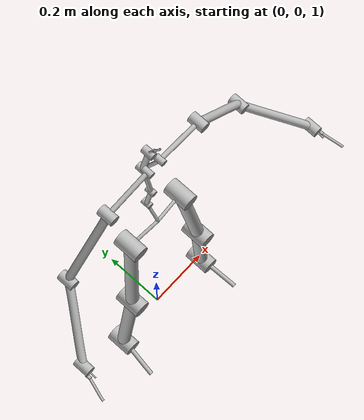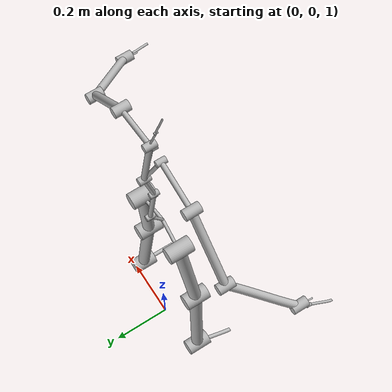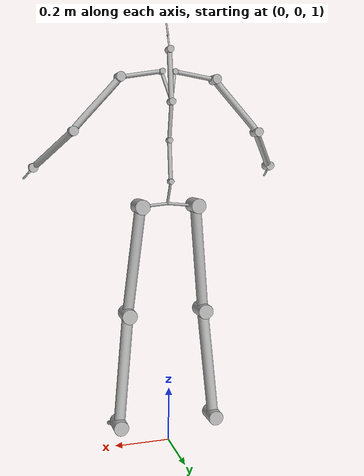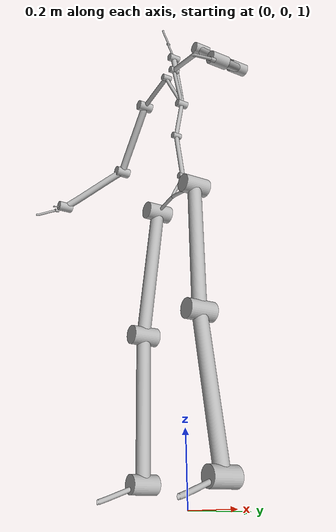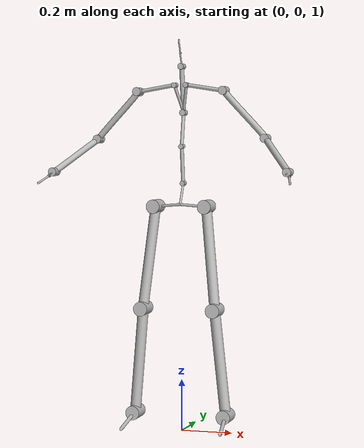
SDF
<?xml version="1.0" ?>
<sdf version="1.5">
	<model name="human_model">
		<pose>0 0 1 1.58 0 0</pose>
		<self_collide>false</self_collide>
		<link name="Hips">
			<pose>0.0 0.874246991787 0.0132157193603 0.0 -0.0 0.0</pose>
			<inertial>
				<mass>1.0</mass>
				<pose>0 0 0 0 0 0</pose>
				<inertia>
					<ixx>1.0</ixx>
					<ixy>0.0</ixy>
					<ixz>0.0</ixz>
					<iyy>1.0</iyy>
					<iyz>0.0</iyz>
					<izz>1.0</izz>
				</inertia>
			</inertial>
			<collision name="Hips_collision1">
				<pose>4.0898842298781e-05 6.227551004514857e-05 -4.773981416489651e-05 -9.920938515151079e-10 -0.0 0.0</pose>
				<geometry>
					<mesh>
						<uri>model://makeHuman_avatar/meshes/collisions/COL_BezierCurve.dae</uri>
					</mesh>
				</geometry>
			</collision>
			<collision name="Hips_collision2">
				<pose>0.0 0.07982063412399043 -0.038716734032582245 -9.920938515151079e-10 -0.0 0.0</pose>
				<geometry>
					<mesh>
						<uri>model://makeHuman_avatar/meshes/collisions/COL_BezierCurve_005.dae</uri>
					</mesh>
				</geometry>
			</collision>
			<collision name="Hips_collision3">
				<pose>-4.0898842298781e-05 6.227551004514857e-05 -4.773981416489651e-05 -9.920938515151079e-10 -0.0 0.0</pose>
				<geometry>
					<mesh>
						<uri>model://makeHuman_avatar/meshes/collisions/COL_BezierCurve_025.dae</uri>
					</mesh>
				</geometry>
			</collision>
			<visual name="Hips1">
				<pose>4.0898842298781e-05 6.227551004514857e-05 -4.773981416489651e-05 -9.920952948050399e-10 -0.0 0.0</pose>
				<geometry>
					<mesh>
						<uri>model://makeHuman_avatar/meshes/visual/BezierCurve.dae</uri> <scale>0.1 0.1 0.1</scale>
					</mesh>
				</geometry>
			</visual>
			<visual name="Hips2">
				<pose>0.0 0.07982063412399043 -0.038716734032582245 -9.920952948050399e-10 -0.0 0.0</pose>
				<geometry>
					<mesh>
						<uri>model://makeHuman_avatar/meshes/visual/BezierCurve_005.dae</uri> <scale>0.1 0.1 0.1</scale>
					</mesh>
				</geometry>
			</visual>
			<visual name="Hips3">
				<pose>-4.0898842298781e-05 6.227551004514857e-05 -4.773981416489651e-05 -9.920952948050399e-10 -0.0 0.0</pose>
				<geometry>
					<mesh>
						<uri>model://makeHuman_avatar/meshes/visual/BezierCurve_025.dae</uri> <scale>0.1 0.1 0.1</scale>
					</mesh>
				</geometry>
			</visual>
		</link>
		<link name="LHipJoint">
			<pose>4.08988422988e-05 0.874309171353 0.0131679805095 0.0 -0.0 0.0</pose>
			<inertial>
				<mass>1.0</mass>
				<pose>0 0 0 0 0 0</pose>
				<inertia>
					<ixx>1.0</ixx>
					<ixy>0.0</ixy>
					<ixz>0.0</ixz>
					<iyy>1.0</iyy>
					<iyz>0.0</iyz>
					<izz>1.0</izz>
				</inertia>
			</inertial>
			<collision name="LHipJoint_collision1">
				<pose>0.101318432410336 -0.008075332761933396 -0.008275742207106085 4.98025121142831e-10 -0.0 0.0</pose>
				<geometry>
					<mesh>
						<uri>model://makeHuman_avatar/meshes/collisions/COL_BezierCurve_001.dae</uri>
					</mesh>
				</geometry>
			</collision>
			<visual name="LHipJoint1">
				<pose>0.101318432410336 -0.008075332761933396 -0.008275742207106085 4.980265089216118e-10 -0.0 0.0</pose>
				<geometry>
					<mesh>
						<uri>model://makeHuman_avatar/meshes/visual/BezierCurve_001.dae</uri> <scale>0.1 0.1 0.1</scale>
					</mesh>
				</geometry>
			</visual>
		</link>
		<link name="LeftUpLeg">
			<pose>0.101359331253 0.866233838591 0.00489224053757 0.0 -0.0 0.0</pose>
			<inertial>
				<mass>1.0</mass>
				<pose>0 0 0 0 0 0</pose>
				<inertia>
					<ixx>1.0</ixx>
					<ixy>0.0</ixy>
					<ixz>0.0</ixz>
					<iyy>1.0</iyy>
					<iyz>0.0</iyz>
					<izz>1.0</izz>
				</inertia>
			</inertial>
			<collision name="LeftUpLeg_collision1">
				<pose>0.041113961355596196 -0.3910068570227452 0.03251319278051246 1.243083191937444e-09 -0.0 0.0</pose>
				<geometry>
					<mesh>
						<uri>model://makeHuman_avatar/meshes/collisions/COL_BezierCurve_002.dae</uri>
					</mesh>
				</geometry>
			</collision>
			<visual name="LeftUpLeg1">
				<pose>0.041113961355596196 -0.3910068570227452 0.03251319278051246 1.2430838580712589e-09 -0.0 0.0</pose>
				<geometry>
					<mesh>
						<uri>model://makeHuman_avatar/meshes/visual/BezierCurve_002.dae</uri> <scale>0.1 0.1 0.1</scale>
					</mesh>
				</geometry>
			</visual>
			<visual name="LeftUpLeg2">
				<pose>0.0 -9.515814127468817e-08 -1.7716104403244253e-10 1.2430838580712589e-09 -0.0 0.0</pose>
				<geometry>
					<mesh>
						<uri>model://makeHuman_avatar/meshes/visual/LeftUpLeg_axis.dae</uri> <scale>0.1 0.1 0.1</scale>
					</mesh>
				</geometry>
			</visual>
		</link>
		<link name="LeftLeg">
			<pose>0.142473292609 0.475227029252 0.0374054303379 0.0 -0.0 0.0</pose>
			<inertial>
				<mass>1.0</mass>
				<pose>0 0 0 0 0 0</pose>
				<inertia>
					<ixx>1.0</ixx>
					<ixy>0.0</ixy>
					<ixz>0.0</ixz>
					<iyy>1.0</iyy>
					<iyz>0.0</iyz>
					<izz>1.0</izz>
				</inertia>
			</inertial>
			<collision name="LeftLeg_collision1">
				<pose>0.038103199572908864 -0.4055328906406892 -0.014725378375133547 -3.9723233591359985e-09 2.3841858265427618e-08 8.470329598760748e-23</pose>
				<geometry>
					<mesh>
						<uri>model://makeHuman_avatar/meshes/collisions/COL_BezierCurve_003.dae</uri>
					</mesh>
				</geometry>
			</collision>
			<visual name="LeftLeg1">
				<pose>0.038103199572908864 -0.4055328906406892 -0.014725378375133547 -3.972321138689949e-09 2.3841860041784457e-08 0.0</pose>
				<geometry>
					<mesh>
						<uri>model://makeHuman_avatar/meshes/visual/BezierCurve_003.dae</uri> <scale>0.1 0.1 0.1</scale>
					</mesh>
				</geometry>
			</visual>
			<visual name="LeftLeg2">
				<pose>0.0 1.6002074570727005e-09 -5.429082331329558e-09 -3.972321138689949e-09 2.3841860041784457e-08 0.0</pose>
				<geometry>
					<mesh>
						<uri>model://makeHuman_avatar/meshes/visual/LeftLeg_axis.dae</uri> <scale>0.1 0.1 0.1</scale>
					</mesh>
				</geometry>
			</visual>
		</link>
		<link name="LeftFoot">
			<pose>0.180576492182 0.0696940909276 0.0226800534529 0.0 -0.0 0.0</pose>
			<inertial>
				<mass>1.0</mass>
				<pose>0 0 0 0 0 0</pose>
				<inertia>
					<ixx>1.0</ixx>
					<ixy>0.0</ixy>
					<ixz>0.0</ixz>
					<iyy>1.0</iyy>
					<iyz>0.0</iyz>
					<izz>1.0</izz>
				</inertia>
			</inertial>
			<collision name="LeftFoot_collision1">
				<pose>0.013958502023793784 -0.04460706181238683 0.1307900567470499 9.313254611953425e-10 -0.0 0.0</pose>
				<geometry>
					<mesh>
						<uri>model://makeHuman_avatar/meshes/collisions/COL_BezierCurve_004.dae</uri>
					</mesh>
				</geometry>
			</collision>
			<visual name="LeftFoot1">
				<pose>0.013958502023793784 -0.04460706181238683 0.1307900567470499 9.313225746154785e-10 -0.0 0.0</pose>
				<geometry>
					<mesh>
						<uri>model://makeHuman_avatar/meshes/visual/BezierCurve_004.dae</uri> <scale>0.1 0.1 0.1</scale>
					</mesh>
				</geometry>
			</visual>
			<visual name="LeftFoot2">
				<pose>0.0 -1.0950674486062642e-08 1.4888293486755899e-09 9.313225746154785e-10 -0.0 0.0</pose>
				<geometry>
					<mesh>
						<uri>model://makeHuman_avatar/meshes/visual/LeftFoot_axis.dae</uri> <scale>0.1 0.1 0.1</scale>
					</mesh>
				</geometry>
			</visual>
		</link>
		<link name="LeftToeBase">
			<pose>0.194534982285 0.0250870499768 0.1534701102 0.0 -0.0 0.0</pose>
			<inertial>
				<mass>1.0</mass>
				<pose>0 0 0 0 0 0</pose>
				<inertia>
					<ixx>1.0</ixx>
					<ixy>0.0</ixy>
					<ixz>0.0</ixz>
					<iyy>1.0</iyy>
					<iyz>0.0</iyz>
					<izz>1.0</izz>
				</inertia>
			</inertial>
		</link>
		<link name="LowerBack">
			<pose>0.0 0.954067530544 -0.0255010146723 0.0 -0.0 0.0</pose>
			<inertial>
				<mass>1.0</mass>
				<pose>0 0 0 0 0 0</pose>
				<inertia>
					<ixx>1.0</ixx>
					<ixy>0.0</ixy>
					<ixz>0.0</ixz>
					<iyy>1.0</iyy>
					<iyz>0.0</iyz>
					<izz>1.0</izz>
				</inertia>
			</inertial>
			<collision name="LowerBack_collision1">
				<pose>0.0 0.1412628194877925 0.017108939843012982 4.980194590054055e-10 -0.0 0.0</pose>
				<geometry>
					<mesh>
						<uri>model://makeHuman_avatar/meshes/collisions/COL_BezierCurve_006.dae</uri>
					</mesh>
				</geometry>
			</collision>
			<visual name="LowerBack1">
				<pose>0.0 0.1412628194877925 0.017108939843012982 4.980194590054055e-10 -0.0 0.0</pose>
				<geometry>
					<mesh>
						<uri>model://makeHuman_avatar/meshes/visual/BezierCurve_006.dae</uri> <scale>0.1 0.1 0.1</scale>
					</mesh>
				</geometry>
			</visual>
			<visual name="LowerBack2">
				<pose>0.0 -9.648212115349729e-08 -2.960592881669393e-09 4.980194590054055e-10 -0.0 0.0</pose>
				<geometry>
					<mesh>
						<uri>model://makeHuman_avatar/meshes/visual/LowerBack_axis.dae</uri> <scale>0.1 0.1 0.1</scale>
					</mesh>
				</geometry>
			</visual>
		</link>
		<link name="Spine">
			<pose>0.0 1.0953304454 -0.00839207333917 0.0 -0.0 0.0</pose>
			<inertial>
				<mass>1.0</mass>
				<pose>0 0 0 0 0 0</pose>
				<inertia>
					<ixx>1.0</ixx>
					<ixy>0.0</ixy>
					<ixz>0.0</ixz>
					<iyy>1.0</iyy>
					<iyz>0.0</iyz>
					<izz>1.0</izz>
				</inertia>
			</inertial>
			<collision name="Spine_collision">
				<pose>0.0 0.12902202798458973 -0.025047067180977267 -2.4703580847607043e-10 -0.0 0.0</pose>
				<geometry>
					<mesh>
						<uri>model://makeHuman_avatar/meshes/collisions/COL_BezierCurve_007.dae</uri>
					</mesh>
				</geometry>
			</collision>
			<visual name="Spine1">
				<pose>0.0 0.12902202798458973 -0.025047067180977267 -2.4703439294171403e-10 -0.0 0.0</pose>
				<geometry>
					<mesh>
						<uri>model://makeHuman_avatar/meshes/visual/BezierCurve_007.dae</uri> <scale>0.1 0.1 0.1</scale>
					</mesh>
				</geometry>
			</visual>
			<visual name="Spine2">
				<pose>0.0 -3.6682692985786373e-10 -1.9470008118329686e-10 -2.4703439294171403e-10 -0.0 0.0</pose>
				<geometry>
					<mesh>
						<uri>model://makeHuman_avatar/meshes/visual/Spine_axis.dae</uri> <scale>0.1 0.1 0.1</scale>
					</mesh>
				</geometry>
			</visual>
		</link>
		<link name="Spine1">
			<pose>0.0 1.22435247338 -0.0334391375399 0.0 -0.0 0.0</pose>
			<inertial>
				<mass>1.0</mass>
				<pose>0 0 0 0 0 0</pose>
				<inertia>
					<ixx>1.0</ixx>
					<ixy>0.0</ixy>
					<ixz>0.0</ixz>
					<iyy>1.0</iyy>
					<iyz>0.0</iyz>
					<izz>1.0</izz>
				</inertia>
			</inertial>
			<collision name="Spine1_collision1">
				<pose>0.022767527740709892 0.10387725984867302 0.04022380173539819 1.988138320641042e-09 -0.0 0.0</pose>
				<geometry>
					<mesh>
						<uri>model://makeHuman_avatar/meshes/collisions/COL_BezierCurve_008.dae</uri>
					</mesh>
				</geometry>
			</collision>
			<collision name="Spine1_collision">
				<pose>0.0 0.17499389909198726 0.023713125641839583 1.988138320641042e-09 -0.0 0.0</pose>
				<geometry>
					<mesh>
						<uri>model://makeHuman_avatar/meshes/collisions/COL_BezierCurve_015.dae</uri>
					</mesh>
				</geometry>
			</collision>
			<collision name="Spine1_collision3">
				<pose>-0.022767527740709892 0.10387725984867302 0.04022380173539819 1.988138320641042e-09 -0.0 0.0</pose>
				<geometry>
					<mesh>
						<uri>model://makeHuman_avatar/meshes/collisions/COL_BezierCurve_018.dae</uri>
					</mesh>
				</geometry>
			</collision>
			<visual name="Spine11">
				<pose>0.022767527740709892 0.10387725984867302 0.04022380173539819 1.988141207220906e-09 -0.0 0.0</pose>
				<geometry>
					<mesh>
						<uri>model://makeHuman_avatar/meshes/visual/BezierCurve_008.dae</uri> <scale>0.1 0.1 0.1</scale>
					</mesh>
				</geometry>
			</visual>
			<visual name="Spine12">
				<pose>0.0 0.17499389909198726 0.023713125641839583 1.988141207220906e-09 -0.0 0.0</pose>
				<geometry>
					<mesh>
						<uri>model://makeHuman_avatar/meshes/visual/BezierCurve_015.dae</uri> <scale>0.1 0.1 0.1</scale>
					</mesh>
				</geometry>
			</visual>
			<visual name="Spine13">
				<pose>-0.022767527740709892 0.10387725984867302 0.04022380173539819 1.988141207220906e-09 -0.0 0.0</pose>
				<geometry>
					<mesh>
						<uri>model://makeHuman_avatar/meshes/visual/BezierCurve_018.dae</uri> <scale>0.1 0.1 0.1</scale>
					</mesh>
				</geometry>
			</visual>
			<visual name="Spine14">
				<pose>0.0 -9.68291047560779e-08 -2.8541933686602565e-09 1.988141207220906e-09 -0.0 0.0</pose>
				<geometry>
					<mesh>
						<uri>model://makeHuman_avatar/meshes/visual/Spine1_axis.dae</uri> <scale>0.1 0.1 0.1</scale>
					</mesh>
				</geometry>
			</visual>
		</link>
		<link name="LeftShoulder">
			<pose>0.0227675277407 1.32822973323 0.0067846641955 0.0 -0.0 0.0</pose>
			<inertial>
				<mass>1.0</mass>
				<pose>0 0 0 0 0 0</pose>
				<inertia>
					<ixx>1.0</ixx>
					<ixy>0.0</ixy>
					<ixz>0.0</ixz>
					<iyy>1.0</iyy>
					<iyz>0.0</iyz>
					<izz>1.0</izz>
				</inertia>
			</inertial>
			<collision name="LeftShoulder_collision1">
				<pose>0.1472653291712005 -0.0226767543357127 -0.002212353828733471 1.254932130434483e-10 -0.0 0.0</pose>
				<geometry>
					<mesh>
						<uri>model://makeHuman_avatar/meshes/collisions/COL_BezierCurve_009.dae</uri>
					</mesh>
				</geometry>
			</collision>
			<visual name="LeftShoulder1">
				<pose>0.1472653291712005 -0.0226767543357127 -0.002212353828733471 1.254925052762701e-10 -0.0 0.0</pose>
				<geometry>
					<mesh>
						<uri>model://makeHuman_avatar/meshes/visual/BezierCurve_009.dae</uri> <scale>0.1 0.1 0.1</scale>
					</mesh>
				</geometry>
			</visual>
			<visual name="LeftShoulder2">
				<pose>-1.4901161415892261e-09 9.566400791969416e-08 5.5763394733391984e-11 1.254925052762701e-10 -0.0 0.0</pose>
				<geometry>
					<mesh>
						<uri>model://makeHuman_avatar/meshes/visual/LeftShoulder_axis.dae</uri> <scale>0.1 0.1 0.1</scale>
					</mesh>
				</geometry>
			</visual>
		</link>
		<link name="LeftArm">
			<pose>0.170032856912 1.30555297889 0.00457231036677 0.0 -0.0 0.0</pose>
			<inertial>
				<mass>1.0</mass>
				<pose>0 0 0 0 0 0</pose>
				<inertia>
					<ixx>1.0</ixx>
					<ixy>0.0</ixy>
					<ixz>0.0</ixz>
					<iyy>1.0</iyy>
					<iyz>0.0</iyz>
					<izz>1.0</izz>
				</inertia>
			</inertial>
			<collision name="LeftArm_collision1">
				<pose>0.16132252456728402 -0.18058624536672596 0.0007237784672346481 1.254932130434483e-10 -2.980232505223057e-09 0.0</pose>
				<geometry>
					<mesh>
						<uri>model://makeHuman_avatar/meshes/collisions/COL_BezierCurve_010.dae</uri>
					</mesh>
				</geometry>
			</collision>
			<visual name="LeftArm1">
				<pose>0.16132252456728402 -0.18058624536672596 0.0007237784672346481 1.254925052762701e-10 -2.980232949312267e-09 0.0</pose>
				<geometry>
					<mesh>
						<uri>model://makeHuman_avatar/meshes/visual/BezierCurve_010.dae</uri> <scale>0.1 0.1 0.1</scale>
					</mesh>
				</geometry>
			</visual>
			<visual name="LeftArm2">
				<pose>-1.1920929132713809e-08 -2.8590243772143865e-07 -7.057678990925534e-11 1.254925052762701e-10 -2.980232949312267e-09 0.0</pose>
				<geometry>
					<mesh>
						<uri>model://makeHuman_avatar/meshes/visual/LeftArm_axis.dae</uri> <scale>0.1 0.1 0.1</scale>
					</mesh>
				</geometry>
			</visual>
		</link>
		<link name="LeftForeArm">
			<pose>0.331355405321 1.12496692426 0.00529608846148 0.0 -0.0 0.0</pose>
			<inertial>
				<mass>1.0</mass>
				<pose>0 0 0 0 0 0</pose>
				<inertia>
					<ixx>1.0</ixx>
					<ixy>0.0</ixy>
					<ixz>0.0</ixz>
					<iyy>1.0</iyy>
					<iyz>0.0</iyz>
					<izz>1.0</izz>
				</inertia>
			</inertial>
			<collision name="LeftForeArm_collision1">
				<pose>0.1219484585813948 -0.12415675109858437 0.1632420325762336 1.254932130434483e-10 -0.0 0.0</pose>
				<geometry>
					<mesh>
						<uri>model://makeHuman_avatar/meshes/collisions/COL_BezierCurve_011.dae</uri>
					</mesh>
				</geometry>
			</collision>
			<visual name="LeftForeArm1">
				<pose>0.1219484585813948 -0.12415675109858437 0.1632420325762336 1.254925052762701e-10 -0.0 0.0</pose>
				<geometry>
					<mesh>
						<uri>model://makeHuman_avatar/meshes/visual/BezierCurve_011.dae</uri> <scale>0.1 0.1 0.1</scale>
					</mesh>
				</geometry>
			</visual>
			<visual name="LeftForeArm2">
				<pose>-2.3841858265427618e-08 9.559893357281262e-08 -3.410605182470458e-14 1.254925052762701e-10 -0.0 0.0</pose>
				<geometry>
					<mesh>
						<uri>model://makeHuman_avatar/meshes/visual/LeftForeArm_axis.dae</uri> <scale>0.1 0.1 0.1</scale>
					</mesh>
				</geometry>
			</visual>
		</link>
		<link name="LeftHand">
			<pose>0.453303911586 1.00081016124 0.168538121038 0.0 -0.0 0.0</pose>
			<inertial>
				<mass>1.0</mass>
				<pose>0 0 0 0 0 0</pose>
				<inertia>
					<ixx>1.0</ixx>
					<ixy>0.0</ixy>
					<ixz>0.0</ixz>
					<iyy>1.0</iyy>
					<iyz>0.0</iyz>
					<izz>1.0</izz>
				</inertia>
			</inertial>
			<collision name="LeftHand_collision1">
				<pose>0.0011217594313883694 -0.007652464623040922 0.04383967286109436 -3.972326023671258e-09 -2.3841858265427618e-08 -2.980233659855003e-08</pose>
				<geometry>
					<mesh>
						<uri>model://makeHuman_avatar/meshes/collisions/COL_BezierCurve_012.dae</uri>
					</mesh>
				</geometry>
			</collision>
			<collision name="LeftHand_collision2">
				<pose>0.010663080374346379 -0.015765467521033694 0.026028734833430267 -3.972326023671258e-09 -2.3841858265427618e-08 -2.980233659855003e-08</pose>
				<geometry>
					<mesh>
						<uri>model://makeHuman_avatar/meshes/collisions/COL_BezierCurve_013.dae</uri>
					</mesh>
				</geometry>
			</collision>
			<visual name="LeftHand1">
				<pose>0.0011217594313883694 -0.007652464623040922 0.04383967286109436 -3.972328244117307e-09 -2.3841861818141297e-08 -2.980233304583635e-08</pose>
				<geometry>
					<mesh>
						<uri>model://makeHuman_avatar/meshes/visual/BezierCurve_012.dae</uri> <scale>0.1 0.1 0.1</scale>
					</mesh>
				</geometry>
			</visual>
			<visual name="LeftHand2">
				<pose>0.010663080374346379 -0.015765467521033694 0.026028734833430267 -3.972328244117307e-09 -2.3841861818141297e-08 -2.980233304583635e-08</pose>
				<geometry>
					<mesh>
						<uri>model://makeHuman_avatar/meshes/visual/BezierCurve_013.dae</uri> <scale>0.1 0.1 0.1</scale>
					</mesh>
				</geometry>
			</visual>
			<visual name="LeftHand3">
				<pose>0.0 7.367037934001517e-09 2.777877382880199e-08 -3.972328244117307e-09 -2.3841860041784457e-08 0.0</pose>
				<geometry>
					<mesh>
						<uri>model://makeHuman_avatar/meshes/visual/LeftHand_axis.dae</uri> <scale>0.1 0.1 0.1</scale>
					</mesh>
				</geometry>
			</visual>
		</link>
		<link name="LThumb">
			<pose>0.454425671017 0.993157687676 0.212377790919 0.0 -0.0 0.0</pose>
			<inertial>
				<mass>1.0</mass>
				<pose>0 0 0 0 0 0</pose>
				<inertia>
					<ixx>1.0</ixx>
					<ixy>0.0</ixy>
					<ixz>0.0</ixz>
					<iyy>1.0</iyy>
					<iyz>0.0</iyz>
					<izz>1.0</izz>
				</inertia>
			</inertial>
		</link>
		<link name="LeftFingerBase">
			<pose>0.46396699196 0.985044684778 0.19456683799 0.0 -0.0 0.0</pose>
			<inertial>
				<mass>1.0</mass>
				<pose>0 0 0 0 0 0</pose>
				<inertia>
					<ixx>1.0</ixx>
					<ixy>0.0</ixy>
					<ixz>0.0</ixz>
					<iyy>1.0</iyy>
					<iyz>0.0</iyz>
					<izz>1.0</izz>
				</inertia>
			</inertial>
			<collision name="LeftFingerBase_collision1">
				<pose>0.017114945011063587 -0.024840616059908505 0.06827558976822479 -3.9723264677604675e-09 4.7683720083568915e-08 2.980233304583635e-08</pose>
				<geometry>
					<mesh>
						<uri>model://makeHuman_avatar/meshes/collisions/COL_BezierCurve_014.dae</uri>
					</mesh>
				</geometry>
			</collision>
			<visual name="LeftFingerBase1">
				<pose>0.017114945011063587 -0.024840616059908505 0.06827558976822479 -3.972328688206517e-09 4.768372718899627e-08 2.980233659855003e-08</pose>
				<geometry>
					<mesh>
						<uri>model://makeHuman_avatar/meshes/visual/BezierCurve_014.dae</uri> <scale>0.1 0.1 0.1</scale>
					</mesh>
				</geometry>
			</visual>
			<visual name="LeftFingerBase2">
				<pose>-2.9356616420026327e-08 -7.303535307674902e-08 -1.9215807187567207e-08 -3.972328688206517e-09 4.7683723636282593e-08 -2.980233659855003e-08</pose>
				<geometry>
					<mesh>
						<uri>model://makeHuman_avatar/meshes/visual/LeftFingerBase_axis.dae</uri> <scale>0.1 0.1 0.1</scale>
					</mesh>
				</geometry>
			</visual>
		</link>
		<link name="LeftHandFinger1">
			<pose>0.4810819176 0.960204043386 0.262842469481 0.0 -0.0 0.0</pose>
			<inertial>
				<mass>1.0</mass>
				<pose>0 0 0 0 0 0</pose>
				<inertia>
					<ixx>1.0</ixx>
					<ixy>0.0</ixy>
					<ixz>0.0</ixz>
					<iyy>1.0</iyy>
					<iyz>0.0</iyz>
					<izz>1.0</izz>
				</inertia>
			</inertial>
		</link>
		<link name="Neck">
			<pose>0.0 1.39934646784 -0.00972601040794 0.0 -0.0 0.0</pose>
			<inertial>
				<mass>1.0</mass>
				<pose>0 0 0 0 0 0</pose>
				<inertia>
					<ixx>1.0</ixx>
					<ixy>0.0</ixy>
					<ixz>0.0</ixz>
					<iyy>1.0</iyy>
					<iyz>0.0</iyz>
					<izz>1.0</izz>
				</inertia>
			</inertial>
			<collision name="Neck_collision1">
				<pose>0.0 0.0504392631417403 0.01958704321961169 -2.4703580847607043e-10 -0.0 0.0</pose>
				<geometry>
					<mesh>
						<uri>model://makeHuman_avatar/meshes/collisions/COL_BezierCurve_016.dae</uri>
					</mesh>
				</geometry>
			</collision>
			<visual name="Neck1">
				<pose>0.0 0.0504392631417403 0.01958704321961169 -2.4703439294171403e-10 -0.0 0.0</pose>
				<geometry>
					<mesh>
						<uri>model://makeHuman_avatar/meshes/visual/BezierCurve_016.dae</uri> <scale>0.1 0.1 0.1</scale>
					</mesh>
				</geometry>
			</visual>
			<visual name="Neck2">
				<pose>0.0 -4.2513477816592795e-10 -7.261178433479605e-11 -2.4703439294171403e-10 -0.0 0.0</pose>
				<geometry>
					<mesh>
						<uri>model://makeHuman_avatar/meshes/visual/Neck_axis.dae</uri> <scale>0.1 0.1 0.1</scale>
					</mesh>
				</geometry>
			</visual>
		</link>
		<link name="Neck1">
			<pose>0.0 1.44978573098 0.00986103281167 0.0 -0.0 0.0</pose>
			<inertial>
				<mass>1.0</mass>
				<pose>0 0 0 0 0 0</pose>
				<inertia>
					<ixx>1.0</ixx>
					<ixy>0.0</ixy>
					<ixz>0.0</ixz>
					<iyy>1.0</iyy>
					<iyz>0.0</iyz>
					<izz>1.0</izz>
				</inertia>
			</inertial>
			<collision name="Neck1_collision1">
				<pose>0.0 0.0504751212965715 0.019639218146193294 -2.4703583623164604e-10 -0.0 0.0</pose>
				<geometry>
					<mesh>
						<uri>model://makeHuman_avatar/meshes/collisions/COL_BezierCurve_017.dae</uri>
					</mesh>
				</geometry>
			</collision>
			<visual name="Neck11">
				<pose>0.0 0.0504751212965715 0.019639218146193294 -2.4703797341096845e-10 -0.0 0.0</pose>
				<geometry>
					<mesh>
						<uri>model://makeHuman_avatar/meshes/visual/BezierCurve_017.dae</uri> <scale>0.1 0.1 0.1</scale>
					</mesh>
				</geometry>
			</visual>
			<visual name="Neck12">
				<pose>0.0 4.310422305590653e-10 -4.2206239133071914e-11 -2.4703797341096845e-10 -0.0 0.0</pose>
				<geometry>
					<mesh>
						<uri>model://makeHuman_avatar/meshes/visual/Neck1_axis.dae</uri> <scale>0.1 0.1 0.1</scale>
					</mesh>
				</geometry>
			</visual>
		</link>
		<link name="Head">
			<pose>0.0 1.50026085228 0.0295002509579 0.0 -0.0 0.0</pose>
			<inertial>
				<mass>1.0</mass>
				<pose>0 0 0 0 0 0</pose>
				<inertia>
					<ixx>1.0</ixx>
					<ixy>0.0</ixy>
					<ixz>0.0</ixz>
					<iyy>1.0</iyy>
					<iyz>0.0</iyz>
					<izz>1.0</izz>
				</inertia>
			</inertial>
		</link>
		<link name="RightShoulder">
			<pose>-0.0227675277407 1.32822973323 0.0067846641955 0.0 -0.0 0.0</pose>
			<inertial>
				<mass>1.0</mass>
				<pose>0 0 0 0 0 0</pose>
				<inertia>
					<ixx>1.0</ixx>
					<ixy>0.0</ixy>
					<ixz>0.0</ixz>
					<iyy>1.0</iyy>
					<iyz>0.0</iyz>
					<izz>1.0</izz>
				</inertia>
			</inertial>
			<collision name="RightShoulder_collision1">
				<pose>-0.1472653291712005 -0.0226767543357127 -0.002212353828733471 1.254932130434483e-10 -0.0 0.0</pose>
				<geometry>
					<mesh>
						<uri>model://makeHuman_avatar/meshes/collisions/COL_BezierCurve_019.dae</uri>
					</mesh>
				</geometry>
			</collision>
			<visual name="RightShoulder1">
				<pose>-0.1472653291712005 -0.0226767543357127 -0.002212353828733471 1.254925052762701e-10 -0.0 0.0</pose>
				<geometry>
					<mesh>
						<uri>model://makeHuman_avatar/meshes/visual/BezierCurve_019.dae</uri> <scale>0.1 0.1 0.1</scale>
					</mesh>
				</geometry>
			</visual>
			<visual name="RightShoulder2">
				<pose>1.4901161415892261e-09 9.566400791969416e-08 5.5763394733391984e-11 1.254925052762701e-10 -0.0 0.0</pose>
				<geometry>
					<mesh>
						<uri>model://makeHuman_avatar/meshes/visual/RightShoulder_axis.dae</uri> <scale>0.1 0.1 0.1</scale>
					</mesh>
				</geometry>
			</visual>
		</link>
		<link name="RightArm">
			<pose>-0.170032856912 1.30555297889 0.00457231036677 0.0 -0.0 0.0</pose>
			<inertial>
				<mass>1.0</mass>
				<pose>0 0 0 0 0 0</pose>
				<inertia>
					<ixx>1.0</ixx>
					<ixy>0.0</ixy>
					<ixz>0.0</ixz>
					<iyy>1.0</iyy>
					<iyz>0.0</iyz>
					<izz>1.0</izz>
				</inertia>
			</inertial>
			<collision name="RightArm_collision1">
				<pose>-0.16132252456728402 -0.18058624536672596 0.0007237784672346481 1.254932130434483e-10 2.980232505223057e-09 0.0</pose>
				<geometry>
					<mesh>
						<uri>model://makeHuman_avatar/meshes/collisions/COL_BezierCurve_020.dae</uri>
					</mesh>
				</geometry>
			</collision>
			<visual name="RightArm1">
				<pose>-0.16132252456728402 -0.18058624536672596 0.0007237784672346481 1.254925052762701e-10 2.980232949312267e-09 0.0</pose>
				<geometry>
					<mesh>
						<uri>model://makeHuman_avatar/meshes/visual/BezierCurve_020.dae</uri> <scale>0.1 0.1 0.1</scale>
					</mesh>
				</geometry>
			</visual>
			<visual name="RightArm2">
				<pose>1.1920929132713809e-08 -2.8590243772143865e-07 -7.057678990925534e-11 1.254925052762701e-10 2.980232949312267e-09 0.0</pose>
				<geometry>
					<mesh>
						<uri>model://makeHuman_avatar/meshes/visual/RightArm_axis.dae</uri> <scale>0.1 0.1 0.1</scale>
					</mesh>
				</geometry>
			</visual>
		</link>
		<link name="RightForeArm">
			<pose>-0.331355405321 1.12496692426 0.00529608846148 0.0 -0.0 0.0</pose>
			<inertial>
				<mass>1.0</mass>
				<pose>0 0 0 0 0 0</pose>
				<inertia>
					<ixx>1.0</ixx>
					<ixy>0.0</ixy>
					<ixz>0.0</ixz>
					<iyy>1.0</iyy>
					<iyz>0.0</iyz>
					<izz>1.0</izz>
				</inertia>
			</inertial>
			<collision name="RightForeArm_collision1">
				<pose>-0.1219484585813948 -0.12415675109858437 0.1632420325762336 1.254932130434483e-10 -0.0 0.0</pose>
				<geometry>
					<mesh>
						<uri>model://makeHuman_avatar/meshes/collisions/COL_BezierCurve_021.dae</uri>
					</mesh>
				</geometry>
			</collision>
			<visual name="RightForeArm1">
				<pose>-0.1219484585813948 -0.12415675109858437 0.1632420325762336 1.254925052762701e-10 -0.0 0.0</pose>
				<geometry>
					<mesh>
						<uri>model://makeHuman_avatar/meshes/visual/BezierCurve_021.dae</uri> <scale>0.1 0.1 0.1</scale>
					</mesh>
				</geometry>
			</visual>
			<visual name="RightForeArm2">
				<pose>2.3841858265427618e-08 9.559893357281262e-08 -3.410605182470458e-14 1.254925052762701e-10 -0.0 0.0</pose>
				<geometry>
					<mesh>
						<uri>model://makeHuman_avatar/meshes/visual/RightForeArm_axis.dae</uri> <scale>0.1 0.1 0.1</scale>
					</mesh>
				</geometry>
			</visual>
		</link>
		<link name="RightHand">
			<pose>-0.453303911586 1.00081016124 0.168538121038 0.0 -0.0 0.0</pose>
			<inertial>
				<mass>1.0</mass>
				<pose>0 0 0 0 0 0</pose>
				<inertia>
					<ixx>1.0</ixx>
					<ixy>0.0</ixy>
					<ixz>0.0</ixz>
					<iyy>1.0</iyy>
					<iyz>0.0</iyz>
					<izz>1.0</izz>
				</inertia>
			</inertial>
			<collision name="RightHand_collision1">
				<pose>-0.0010897636575961656 -0.007653418297371539 0.043807414826861235 -3.972326023671258e-09 2.3841858265427618e-08 2.980233659855003e-08</pose>
				<geometry>
					<mesh>
						<uri>model://makeHuman_avatar/meshes/collisions/COL_BezierCurve_022.dae</uri>
					</mesh>
				</geometry>
			</collision>
			<collision name="RightHand_collision2">
				<pose>-0.010663080374346379 -0.015765467521033694 0.026028734833430267 -3.972326023671258e-09 2.3841858265427618e-08 2.980233659855003e-08</pose>
				<geometry>
					<mesh>
						<uri>model://makeHuman_avatar/meshes/collisions/COL_BezierCurve_023.dae</uri>
					</mesh>
				</geometry>
			</collision>
			<visual name="RightHand1">
				<pose>-0.0010897636575961656 -0.007653418297371539 0.043807414826861235 -3.972328244117307e-09 2.3841861818141297e-08 2.980233304583635e-08</pose>
				<geometry>
					<mesh>
						<uri>model://makeHuman_avatar/meshes/visual/BezierCurve_022.dae</uri> <scale>0.1 0.1 0.1</scale>
					</mesh>
				</geometry>
			</visual>
			<visual name="RightHand2">
				<pose>-0.010663080374346379 -0.015765467521033694 0.026028734833430267 -3.972328244117307e-09 2.3841861818141297e-08 2.980233304583635e-08</pose>
				<geometry>
					<mesh>
						<uri>model://makeHuman_avatar/meshes/visual/BezierCurve_023.dae</uri> <scale>0.1 0.1 0.1</scale>
					</mesh>
				</geometry>
			</visual>
			<visual name="RightHand3">
				<pose>0.0 7.367037934001517e-09 2.777877382880199e-08 -3.972328244117307e-09 2.3841860041784457e-08 0.0</pose>
				<geometry>
					<mesh>
						<uri>model://makeHuman_avatar/meshes/visual/RightHand_axis.dae</uri> <scale>0.1 0.1 0.1</scale>
					</mesh>
				</geometry>
			</visual>
		</link>
		<link name="RThumb">
			<pose>-0.454393675244 0.993156734002 0.212345532885 0.0 -0.0 0.0</pose>
			<inertial>
				<mass>1.0</mass>
				<pose>0 0 0 0 0 0</pose>
				<inertia>
					<ixx>1.0</ixx>
					<ixy>0.0</ixy>
					<ixz>0.0</ixz>
					<iyy>1.0</iyy>
					<iyz>0.0</iyz>
					<izz>1.0</izz>
				</inertia>
			</inertial>
		</link>
		<link name="RightFingerBase">
			<pose>-0.46396699196 0.985044684778 0.19456683799 0.0 -0.0 0.0</pose>
			<inertial>
				<mass>1.0</mass>
				<pose>0 0 0 0 0 0</pose>
				<inertia>
					<ixx>1.0</ixx>
					<ixy>0.0</ixy>
					<ixz>0.0</ixz>
					<iyy>1.0</iyy>
					<iyz>0.0</iyz>
					<izz>1.0</izz>
				</inertia>
			</inertial>
			<collision name="RightFingerBase_collision1">
				<pose>-0.017114945011063587 -0.024840616059908505 0.06827558976822479 -3.9723264677604675e-09 -4.7683720083568915e-08 -2.980233304583635e-08</pose>
				<geometry>
					<mesh>
						<uri>model://makeHuman_avatar/meshes/collisions/COL_BezierCurve_024.dae</uri>
					</mesh>
				</geometry>
			</collision>
			<visual name="RightFingerBase2">
				<pose>-0.017114945011063587 -0.024840616059908505 0.06827558976822479 -3.972328688206517e-09 -4.768372718899627e-08 -2.980233659855003e-08</pose>
				<geometry>
					<mesh>
						<uri>model://makeHuman_avatar/meshes/visual/BezierCurve_024.dae</uri> <scale>0.1 0.1 0.1</scale>
					</mesh>
				</geometry>
			</visual>
			<visual name="RightFingerBase3">
				<pose>2.9356616420026327e-08 -7.303535307674902e-08 -1.9215807187567207e-08 -3.972328688206517e-09 -4.7683723636282593e-08 2.980233659855003e-08</pose>
				<geometry>
					<mesh>
						<uri>model://makeHuman_avatar/meshes/visual/RightFingerBase_axis.dae</uri> <scale>0.1 0.1 0.1</scale>
					</mesh>
				</geometry>
			</visual>
		</link>
		<link name="RightHandFinger1">
			<pose>-0.4810819176 0.960204043386 0.262842469481 0.0 -0.0 0.0</pose>
			<inertial>
				<mass>1.0</mass>
				<pose>0 0 0 0 0 0</pose>
				<inertia>
					<ixx>1.0</ixx>
					<ixy>0.0</ixy>
					<ixz>0.0</ixz>
					<iyy>1.0</iyy>
					<iyz>0.0</iyz>
					<izz>1.0</izz>
				</inertia>
			</inertial>
		</link>
		<link name="RHipJoint">
			<pose>-4.08988422988e-05 0.874309171353 0.0131679805095 0.0 -0.0 0.0</pose>
			<inertial>
				<mass>1.0</mass>
				<pose>0 0 0 0 0 0</pose>
				<inertia>
					<ixx>1.0</ixx>
					<ixy>0.0</ixy>
					<ixz>0.0</ixz>
					<iyy>1.0</iyy>
					<iyz>0.0</iyz>
					<izz>1.0</izz>
				</inertia>
			</inertial>
			<collision name="RHipJoint_collision1">
				<pose>-0.101318432410336 -0.008075332761933396 -0.008275742207106085 4.98025121142831e-10 -0.0 0.0</pose>
				<geometry>
					<mesh>
						<uri>model://makeHuman_avatar/meshes/collisions/COL_BezierCurve_026.dae</uri>
					</mesh>
				</geometry>
			</collision>
			<visual name="RHipJoint2">
				<pose>-0.101318432410336 -0.008075332761933396 -0.008275742207106085 4.980265089216118e-10 -0.0 0.0</pose>
				<geometry>
					<mesh>
						<uri>model://makeHuman_avatar/meshes/visual/BezierCurve_026.dae</uri> <scale>0.1 0.1 0.1</scale>
					</mesh>
				</geometry>
			</visual>
		</link>
		<link name="RightUpLeg">
			<pose>-0.101359331253 0.866233838591 0.00489224053757 0.0 -0.0 0.0</pose>
			<inertial>
				<mass>1.0</mass>
				<pose>0 0 0 0 0 0</pose>
				<inertia>
					<ixx>1.0</ixx>
					<ixy>0.0</ixy>
					<ixz>0.0</ixz>
					<iyy>1.0</iyy>
					<iyz>0.0</iyz>
					<izz>1.0</izz>
				</inertia>
			</inertial>
			<collision name="RightUpLeg_collision1">
				<pose>-0.041113961355596196 -0.3910068570227452 0.03251319278051246 1.243083191937444e-09 -0.0 0.0</pose>
				<geometry>
					<mesh>
						<uri>model://makeHuman_avatar/meshes/collisions/COL_BezierCurve_027.dae</uri>
					</mesh>
				</geometry>
			</collision>
			<visual name="RightUpLeg1">
				<pose>-0.041113961355596196 -0.3910068570227452 0.03251319278051246 1.2430838580712589e-09 -0.0 0.0</pose>
				<geometry>
					<mesh>
						<uri>model://makeHuman_avatar/meshes/visual/BezierCurve_027.dae</uri> <scale>0.1 0.1 0.1</scale>
					</mesh>
				</geometry>
			</visual>
			<visual name="RightUpLeg2">
				<pose>0.0 -9.515814127468817e-08 -1.7716104403244253e-10 1.2430838580712589e-09 -0.0 0.0</pose>
				<geometry>
					<mesh>
						<uri>model://makeHuman_avatar/meshes/visual/RightUpLeg_axis.dae</uri> <scale>0.1 0.1 0.1</scale>
					</mesh>
				</geometry>
			</visual>
		</link>
		<link name="RightLeg">
			<pose>-0.142473292609 0.475227029252 0.0374054303379 0.0 -0.0 0.0</pose>
			<inertial>
				<mass>1.0</mass>
				<pose>0 0 0 0 0 0</pose>
				<inertia>
					<ixx>1.0</ixx>
					<ixy>0.0</ixy>
					<ixz>0.0</ixz>
					<iyy>1.0</iyy>
					<iyz>0.0</iyz>
					<izz>1.0</izz>
				</inertia>
			</inertial>
			<collision name="RightLeg_collision1">
				<pose>-0.038103199572908864 -0.4055328906406892 -0.014725378375133547 -3.9723233591359985e-09 -2.3841858265427618e-08 -8.470329598760748e-23</pose>
				<geometry>
					<mesh>
						<uri>model://makeHuman_avatar/meshes/collisions/COL_BezierCurve_028.dae</uri>
					</mesh>
				</geometry>
			</collision>
			<visual name="RightLeg1">
				<pose>-0.038103199572908864 -0.4055328906406892 -0.014725378375133547 -3.972321138689949e-09 -2.3841860041784457e-08 0.0</pose>
				<geometry>
					<mesh>
						<uri>model://makeHuman_avatar/meshes/visual/BezierCurve_028.dae</uri> <scale>0.1 0.1 0.1</scale>
					</mesh>
				</geometry>
			</visual>
			<visual name="RightLeg2">
				<pose>0.0 1.6002074570727005e-09 -5.429082331329558e-09 -3.972321138689949e-09 -2.3841860041784457e-08 0.0</pose>
				<geometry>
					<mesh>
						<uri>model://makeHuman_avatar/meshes/visual/RightLeg_axis.dae</uri> <scale>0.1 0.1 0.1</scale>
					</mesh>
				</geometry>
			</visual>
		</link>
		<link name="RightFoot">
			<pose>-0.180576492182 0.0696940909276 0.0226800534529 0.0 -0.0 0.0</pose>
			<inertial>
				<mass>1.0</mass>
				<pose>0 0 0 0 0 0</pose>
				<inertia>
					<ixx>1.0</ixx>
					<ixy>0.0</ixy>
					<ixz>0.0</ixz>
					<iyy>1.0</iyy>
					<iyz>0.0</iyz>
					<izz>1.0</izz>
				</inertia>
			</inertial>
			<collision name="RightFoot_collision1">
				<pose>-0.013958502023793784 -0.04460706181238683 0.1307900567470499 9.313254611953425e-10 -0.0 0.0</pose>
				<geometry>
					<mesh>
						<uri>model://makeHuman_avatar/meshes/collisions/COL_BezierCurve_029.dae</uri>
					</mesh>
				</geometry>
			</collision>
			<visual name="RightFoot1">
				<pose>-0.013958502023793784 -0.04460706181238683 0.1307900567470499 9.313225746154785e-10 -0.0 0.0</pose>
				<geometry>
					<mesh>
						<uri>model://makeHuman_avatar/meshes/visual/BezierCurve_029.dae</uri> <scale>0.1 0.1 0.1</scale>
					</mesh>
				</geometry>
			</visual>
			<visual name="RightFoot2">
				<pose>0.0 -1.0950674486062642e-08 1.4888293486755899e-09 9.313225746154785e-10 -0.0 0.0</pose>
				<geometry>
					<mesh>
						<uri>model://makeHuman_avatar/meshes/visual/RightFoot_axis.dae</uri> <scale>0.1 0.1 0.1</scale>
					</mesh>
				</geometry>
			</visual>
		</link>
		<link name="RightToeBase">
			<pose>-0.194534982285 0.0250870499768 0.1534701102 0.0 -0.0 0.0</pose>
			<inertial>
				<mass>1.0</mass>
				<pose>0 0 0 0 0 0</pose>
				<inertia>
					<ixx>1.0</ixx>
					<ixy>0.0</ixy>
					<ixz>0.0</ixz>
					<iyy>1.0</iyy>
					<iyz>0.0</iyz>
					<izz>1.0</izz>
				</inertia>
			</inertial>
		</link>

		<joint name="LHipJoint" type="revolute">
			<parent>Hips</parent>
			<child>LHipJoint</child>
			<axis>
				<xyz>0.0 0.0 1.0</xyz>
				<use_parent_model_frame>true</use_parent_model_frame>
				<limit>
					<lower>-1.5707963267948966</lower>
					<upper>1.5707963267948966</upper>
				</limit>
			</axis>
		</joint>
		<joint name="LeftUpLeg" type="ball">
			<parent>LHipJoint</parent>
			<child>LeftUpLeg</child>
			<axis>
				<xyz>0.0 0.0 1.0</xyz>
				<use_parent_model_frame>true</use_parent_model_frame>
				<limit>
					<lower>-1.5707963267948966</lower>
					<upper>1.5707963267948966</upper>
				</limit>
			</axis>
		</joint>
		<joint name="LeftLeg" type="revolute">
			<parent>LeftUpLeg</parent>
			<child>LeftLeg</child>
			<axis>
				<xyz>0.0 0.0 1.0</xyz>
				<use_parent_model_frame>true</use_parent_model_frame>
				<limit>
					<lower>-1.5707963267948966</lower>
					<upper>1.5707963267948966</upper>
				</limit>
			</axis>
		</joint>
		<joint name="LeftFoot" type="revolute">
			<parent>LeftLeg</parent>
			<child>LeftFoot</child>
			<axis>
				<xyz>0.0 0.0 1.0</xyz>
				<use_parent_model_frame>true</use_parent_model_frame>
				<limit>
					<lower>-1.5707963267948966</lower>
					<upper>1.5707963267948966</upper>
				</limit>
			</axis>
		</joint>
		<joint name="LeftToeBase" type="revolute">
			<parent>LeftFoot</parent>
			<child>LeftToeBase</child>
			<axis>
				<xyz>0.0 0.0 1.0</xyz>
				<use_parent_model_frame>true</use_parent_model_frame>
				<limit>
					<lower>-1.5707963267948966</lower>
					<upper>1.5707963267948966</upper>
				</limit>
			</axis>
		</joint>
		<joint name="LowerBack" type="revolute">
			<parent>Hips</parent>
			<child>LowerBack</child>
			<axis>
				<xyz>0.0 0.0 1.0</xyz>
				<use_parent_model_frame>true</use_parent_model_frame>
				<limit>
					<lower>-1.5707963267948966</lower>
					<upper>1.5707963267948966</upper>
				</limit>
			</axis>
		</joint>
		<joint name="Spine" type="revolute">
			<parent>LowerBack</parent>
			<child>Spine</child>
			<axis>
				<xyz>0.0 0.0 1.0</xyz>
				<use_parent_model_frame>true</use_parent_model_frame>
				<limit>
					<lower>-1.5707963267948966</lower>
					<upper>1.5707963267948966</upper>
				</limit>
			</axis>
		</joint>
		<joint name="Spine1" type="revolute">
			<parent>Spine</parent>
			<child>Spine1</child>
			<axis>
				<xyz>0.0 0.0 1.0</xyz>
				<use_parent_model_frame>true</use_parent_model_frame>
				<limit>
					<lower>-1.5707963267948966</lower>
					<upper>1.5707963267948966</upper>
				</limit>
			</axis>
		</joint>
		<joint name="LeftShoulder" type="revolute">
			<parent>Spine1</parent>
			<child>LeftShoulder</child>
			<axis>
				<xyz>0.0 0.0 1.0</xyz>
				<use_parent_model_frame>true</use_parent_model_frame>
				<limit>
					<lower>-1.5707963267948966</lower>
					<upper>1.5707963267948966</upper>
				</limit>
			</axis>
		</joint>
		<joint name="LeftArm" type="ball">
			<parent>LeftShoulder</parent>
			<child>LeftArm</child>
			<axis>
				<xyz>0.0 0.0 1.0</xyz>
				<use_parent_model_frame>true</use_parent_model_frame>
				<limit>
					<lower>-1.5707963267948966</lower>
					<upper>1.5707963267948966</upper>
				</limit>
			</axis>
		</joint>
		<joint name="LeftForeArm" type="revolute">
			<parent>LeftArm</parent>
			<child>LeftForeArm</child>
			<axis>
				<xyz>0.0 0.0 1.0</xyz>
				<use_parent_model_frame>true</use_parent_model_frame>
				<limit>
					<lower>-1.5707963267948966</lower>
					<upper>1.5707963267948966</upper>
				</limit>
			</axis>
		</joint>
		<joint name="LeftHand" type="revolute">
			<parent>LeftForeArm</parent>
			<child>LeftHand</child>
			<axis>
				<xyz>0.0 0.0 1.0</xyz>
				<use_parent_model_frame>true</use_parent_model_frame>
				<limit>
					<lower>-1.5707963267948966</lower>
					<upper>1.5707963267948966</upper>
				</limit>
			</axis>
		</joint>
		<joint name="LThumb" type="revolute">
			<parent>LeftHand</parent>
			<child>LThumb</child>
			<axis>
				<xyz>0.0 0.0 1.0</xyz>
				<use_parent_model_frame>true</use_parent_model_frame>
				<limit>
					<lower>-1.5707963267948966</lower>
					<upper>1.5707963267948966</upper>
				</limit>
			</axis>
		</joint>
		<joint name="LeftFingerBase" type="revolute">
			<parent>LeftHand</parent>
			<child>LeftFingerBase</child>
			<axis>
				<xyz>0.0 0.0 1.0</xyz>
				<use_parent_model_frame>true</use_parent_model_frame>
				<limit>
					<lower>-1.5707963267948966</lower>
					<upper>1.5707963267948966</upper>
				</limit>
			</axis>
		</joint>
		<joint name="LeftHandFinger1" type="revolute">
			<parent>LeftFingerBase</parent>
			<child>LeftHandFinger1</child>
			<axis>
				<xyz>0.0 0.0 1.0</xyz>
				<use_parent_model_frame>true</use_parent_model_frame>
				<limit>
					<lower>-1.5707963267948966</lower>
					<upper>1.5707963267948966</upper>
				</limit>
			</axis>
		</joint>
		<joint name="Neck" type="ball">
			<parent>Spine1</parent>
			<child>Neck</child>
			<axis>
				<xyz>0.0 0.0 1.0</xyz>
				<use_parent_model_frame>true</use_parent_model_frame>
				<limit>
					<lower>-1.5707963267948966</lower>
					<upper>1.5707963267948966</upper>
				</limit>
			</axis>
		</joint>
		<joint name="Neck1" type="revolute">
			<parent>Neck</parent>
			<child>Neck1</child>
			<axis>
				<xyz>0.0 0.0 1.0</xyz>
				<use_parent_model_frame>true</use_parent_model_frame>
				<limit>
					<lower>-1.5707963267948966</lower>
					<upper>1.5707963267948966</upper>
				</limit>
			</axis>
		</joint>
		<joint name="Head" type="revolute">
			<parent>Neck1</parent>
			<child>Head</child>
			<axis>
				<xyz>0.0 0.0 1.0</xyz>
				<use_parent_model_frame>true</use_parent_model_frame>
				<limit>
					<lower>-1.5707963267948966</lower>
					<upper>1.5707963267948966</upper>
				</limit>
			</axis>
		</joint>
		<joint name="RightShoulder" type="revolute">
			<parent>Spine1</parent>
			<child>RightShoulder</child>
			<axis>
				<xyz>0.0 0.0 1.0</xyz>
				<use_parent_model_frame>true</use_parent_model_frame>
				<limit>
					<lower>-1.5707963267948966</lower>
					<upper>1.5707963267948966</upper>
				</limit>
			</axis>
		</joint>
		<joint name="RightArm" type="ball">
			<parent>RightShoulder</parent>
			<child>RightArm</child>
			<axis>
				<xyz>0.0 0.0 1.0</xyz>
				<use_parent_model_frame>true</use_parent_model_frame>
				<limit>
					<lower>-1.5707963267948966</lower>
					<upper>1.5707963267948966</upper>
				</limit>
			</axis>
		</joint>
		<joint name="RightForeArm" type="revolute">
			<parent>RightArm</parent>
			<child>RightForeArm</child>
			<axis>
				<xyz>0.0 0.0 1.0</xyz>
				<use_parent_model_frame>true</use_parent_model_frame>
				<limit>
					<lower>-1.5707963267948966</lower>
					<upper>1.5707963267948966</upper>
				</limit>
			</axis>
		</joint>
		<joint name="RightHand" type="revolute">
			<parent>RightForeArm</parent>
			<child>RightHand</child>
			<axis>
				<xyz>0.0 0.0 1.0</xyz>
				<use_parent_model_frame>true</use_parent_model_frame>
				<limit>
					<lower>-1.5707963267948966</lower>
					<upper>1.5707963267948966</upper>
				</limit>
			</axis>
		</joint>
		<joint name="RThumb" type="revolute">
			<parent>RightHand</parent>
			<child>RThumb</child>
			<axis>
				<xyz>0.0 0.0 1.0</xyz>
				<use_parent_model_frame>true</use_parent_model_frame>
				<limit>
					<lower>-1.5707963267948966</lower>
					<upper>1.5707963267948966</upper>
				</limit>
			</axis>
		</joint>
		<joint name="RightFingerBase" type="revolute">
			<parent>RightHand</parent>
			<child>RightFingerBase</child>
			<axis>
				<xyz>0.0 0.0 1.0</xyz>
				<use_parent_model_frame>true</use_parent_model_frame>
				<limit>
					<lower>-1.5707963267948966</lower>
					<upper>1.5707963267948966</upper>
				</limit>
			</axis>
		</joint>
		<joint name="RightHandFinger1" type="revolute">
			<parent>RightFingerBase</parent>
			<child>RightHandFinger1</child>
			<axis>
				<xyz>0.0 0.0 1.0</xyz>
				<use_parent_model_frame>true</use_parent_model_frame>
				<limit>
					<lower>-1.5707963267948966</lower>
					<upper>1.5707963267948966</upper>
				</limit>
			</axis>
		</joint>
		<joint name="RHipJoint" type="revolute">
			<parent>Hips</parent>
			<child>RHipJoint</child>
			<axis>
				<xyz>0.0 0.0 1.0</xyz>
				<use_parent_model_frame>true</use_parent_model_frame>
				<limit>
					<lower>-1.5707963267948966</lower>
					<upper>1.5707963267948966</upper>
				</limit>
			</axis>
		</joint>
		<joint name="RightUpLeg" type="ball">
			<parent>RHipJoint</parent>
			<child>RightUpLeg</child>
			<axis>
				<xyz>0.0 0.0 1.0</xyz>
				<use_parent_model_frame>true</use_parent_model_frame>
				<limit>
					<lower>-1.5707963267948966</lower>
					<upper>1.5707963267948966</upper>
				</limit>
			</axis>
		</joint>
		<joint name="RightLeg" type="revolute">
			<parent>RightUpLeg</parent>
			<child>RightLeg</child>
			<axis>
				<xyz>0.0 0.0 1.0</xyz>
				<use_parent_model_frame>true</use_parent_model_frame>
				<limit>
					<lower>-1.5707963267948966</lower>
					<upper>1.5707963267948966</upper>
				</limit>
			</axis>
		</joint>
		<joint name="RightFoot" type="revolute">
			<parent>RightLeg</parent>
			<child>RightFoot</child>
			<axis>
				<xyz>0.0 0.0 1.0</xyz>
				<use_parent_model_frame>true</use_parent_model_frame>
				<limit>
					<lower>-1.5707963267948966</lower>
					<upper>1.5707963267948966</upper>
				</limit>
			</axis>
		</joint>
		<joint name="RightToeBase" type="revolute">
			<parent>RightFoot</parent>
			<child>RightToeBase</child>
			<axis>
				<xyz>0.0 0.0 1.0</xyz>
				<use_parent_model_frame>true</use_parent_model_frame>
				<limit>
					<lower>-1.5707963267948966</lower>
					<upper>1.5707963267948966</upper>
				</limit>
			</axis>
		</joint>
	</model>
</sdf>
